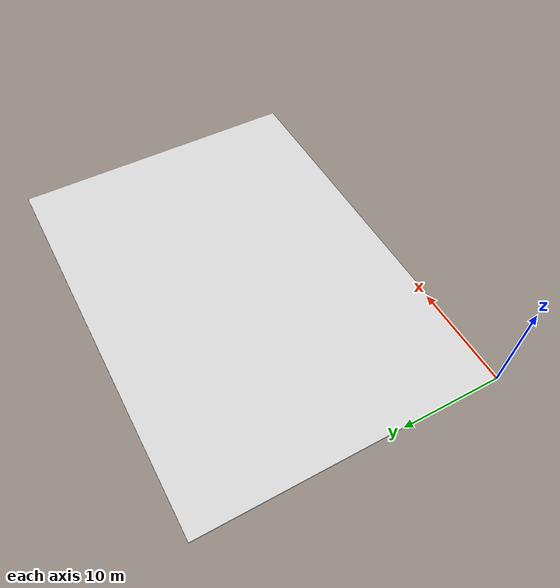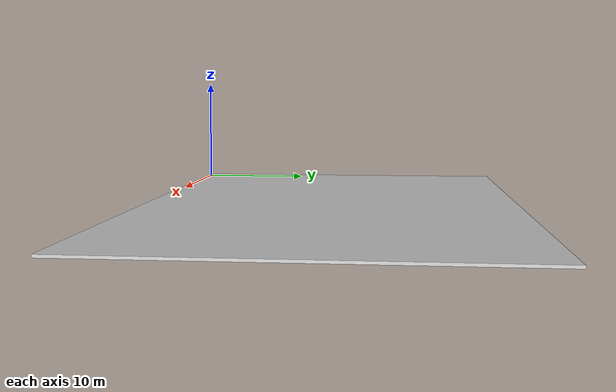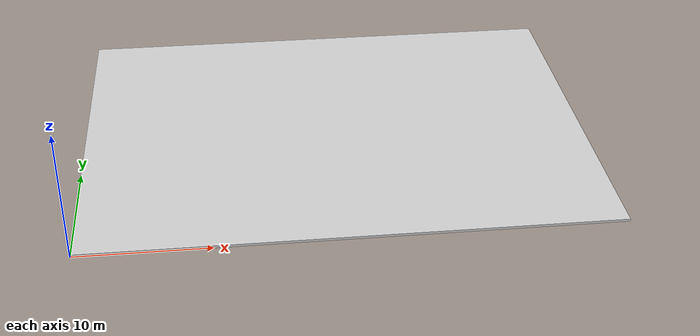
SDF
<?xml version="1.0" ?>
<sdf version="1.5">
  <model name="lightgrey_floor">
    <static>true</static>
    <link name="link">
      <pose>20 15 0.1 0 0 0</pose>
      <self_collide>0</self_collide>
      <kinematic>0</kinematic>
      <inertial>
        <inertia>
          <ixx>nan</ixx>
          <ixy>0</ixy>
          <ixz>0</ixz>
          <iyy>nan</iyy>
          <iyz>0</iyz>
          <izz>nan</izz>
        </inertia>
        <mass>0</mass>
        <pose frame=''>0 0 0 0 0 0</pose>
      </inertial>
      <visual name="visual">
        <cast_shadows>false</cast_shadows>
        <geometry>
          <box>
            <size>40 30 0.2</size>
          </box>
        </geometry>
        <material>
          <script>
            <uri>model://fixed/env_floor/lightgrey_floor/materials/scripts</uri>
            <uri>model://fixed/env_floor/lightgrey_floor/materials/textures</uri>
            <name>vrc/lightgrey_floor</name>
          </script>
          <ambient>1 0.764706 0.305882 1</ambient>
          <shader type='pixel'/>
          <diffuse>0.7 0.7 0.7 1</diffuse>
          <specular>0.01 0.01 0.01 1</specular>
          <emissive>0 0 0 1</emissive>
        </material>
      </visual>
      <collision name="collision">
        <laser_retro>0</laser_retro>
        <max_contacts>10</max_contacts>
        <geometry>
          <box>
            <size>40 30 0.2</size>
          </box>
        </geometry>
        <surface>
          <friction>
            <ode>
              <mu>1</mu>
              <mu2>1</mu2>
              <fdir1>0 0 0</fdir1>
              <slip1>0</slip1>
              <slip2>0</slip2>
            </ode>
            <torsional>
              <coefficient>1</coefficient>
              <patch_radius>0</patch_radius>
              <surface_radius>0</surface_radius>
              <use_patch_radius>1</use_patch_radius>
              <ode>
                <slip>0</slip>
              </ode>
            </torsional>
          </friction>
          <bounce>
            <restitution_coefficient>0</restitution_coefficient>
            <threshold>1e+06</threshold>
          </bounce>
          <contact>
            <collide_without_contact>0</collide_without_contact>
            <collide_without_contact_bitmask>1</collide_without_contact_bitmask>
            <collide_bitmask>1</collide_bitmask>
            <ode>
              <soft_cfm>0</soft_cfm>
              <soft_erp>0.2</soft_erp>
              <kp>1e+13</kp>
              <kd>1</kd>
              <max_vel>0.01</max_vel>
              <min_depth>0</min_depth>
            </ode>
            <bullet>
              <split_impulse>1</split_impulse>
              <split_impulse_penetration_threshold>-0.01</split_impulse_penetration_threshold>
              <soft_cfm>0</soft_cfm>
              <soft_erp>0.2</soft_erp>
              <kp>1e+13</kp>
              <kd>1</kd>
            </bullet>
          </contact>
        </surface>
      </collision>
    </link>
  </model>
</sdf>
